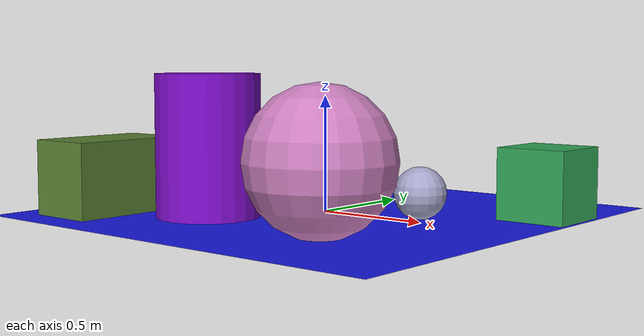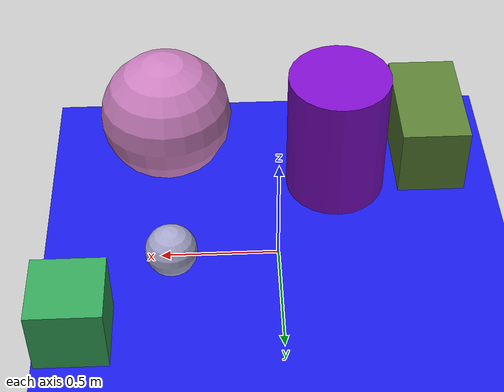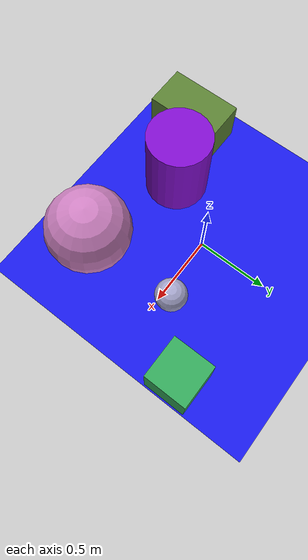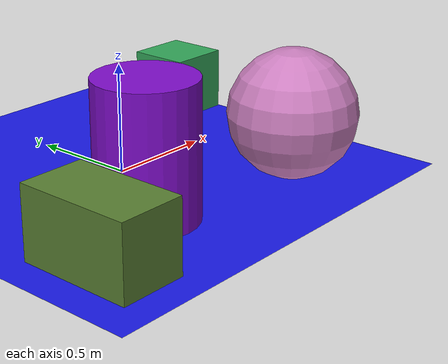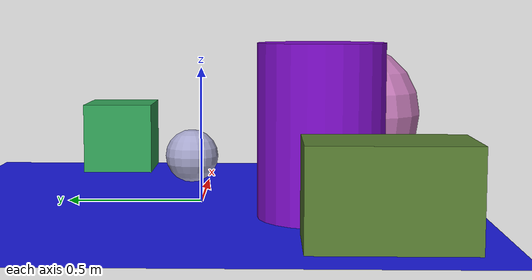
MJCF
<mujoco>
   <asset>
<texture type="skybox" builtin="gradient" rgb1="0.7 0.8 0.2" rgb2="0.1 0.1 0.5" width="256" height="256"/>
<texture name="checker_0" builtin="checker" rgb1="0.2 0.2 0.4" rgb2="0.5 0.8 0.0" width="200" height="200"/>
<texture name="gradient_1" builtin="gradient" rgb1="0.3 0.1 0.8" rgb2="0.7 0.0 0.8" width="200" height="200"/>
<texture name="checker_2" builtin="checker" rgb1="0.2 0.4 0.3" rgb2="0.2 0.9 0.4" width="200" height="200"/>
<texture name="checker_3" builtin="checker" rgb1="0.6 0.8 0.7" rgb2="0.7 0.5 0.9" width="200" height="200"/>
<texture name="gradient_4" builtin="gradient" rgb1="0.9 0.1 0.6" rgb2="0.7 0.9 0.9" width="200" height="200"/><material name="checker_0_mat" reflectance="0" texrepeat="9 9" texture="checker_0" texuniform="false" />
<material name="gradient_1_mat" reflectance="0" texture="gradient_1" texuniform="true"/>
<material name="checker_2_mat" reflectance="0" texrepeat="6 6" texture="checker_2" texuniform="false" />
<material name="checker_3_mat" reflectance="0" texrepeat="2 2" texture="checker_3" texuniform="false" />
<material name="gradient_4_mat" reflectance="0" texture="gradient_4" texuniform="true"/>
   </asset>

   <worldbody>
      <light diffuse=".9 .9 .9" pos="0 0 3" dir="0 0 -1"/>
     <geom type="plane" size="1 1 0.1" rgba="0.1 0.1 0.9 1"/>
<geom type="box" pos="-0.71 -0.61 0.16" size="0.15 0.26 0.16" material="checker_0_mat" />
<geom type="cylinder" pos="-0.28 -0.43 0.3" size="0.22 0.3 0.3" material="gradient_1_mat" />
<geom type="box" pos="0.84 0.42 0.15" size="0.15 0.15 0.15" material="checker_2_mat" />
<geom type="sphere" pos="0.45 0.07 0.11" size="0.11 0.11 0.11" material="checker_3_mat" />
<geom type="sphere" pos="0.47 -0.59 0.29" size="0.29 0.29 0.29" material="gradient_4_mat" /><camera euler="60 0 180" fovy="60" name="camera_a" pos="0 -1.5 1"></camera>   </worldbody>
</mujoco>
